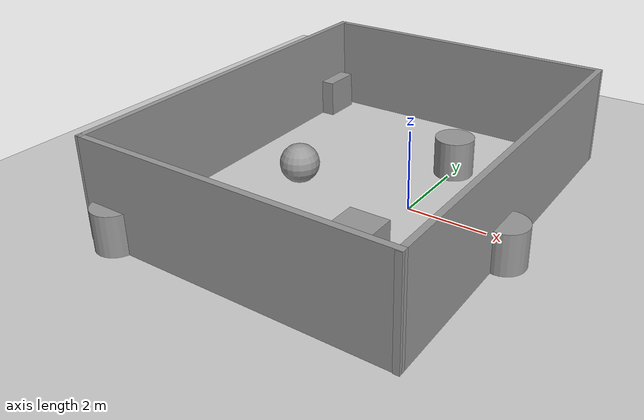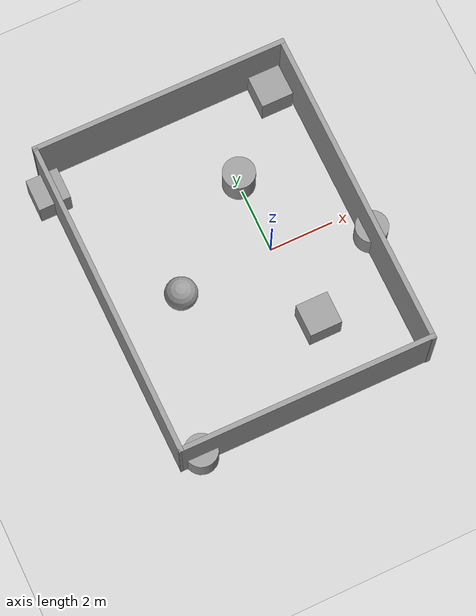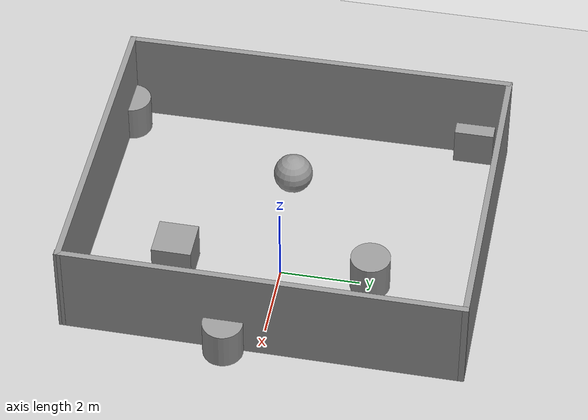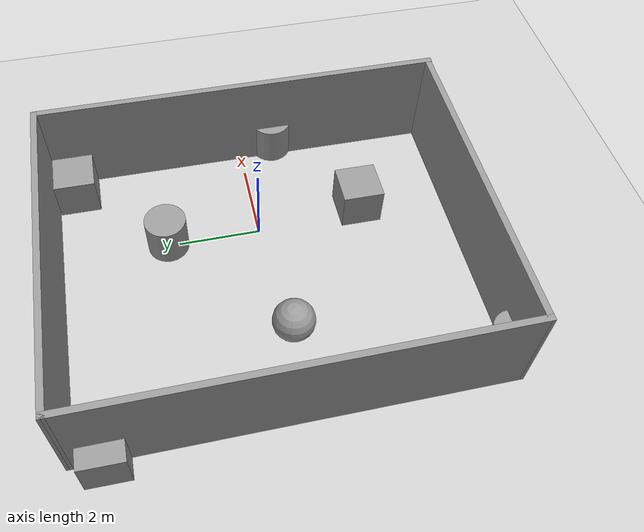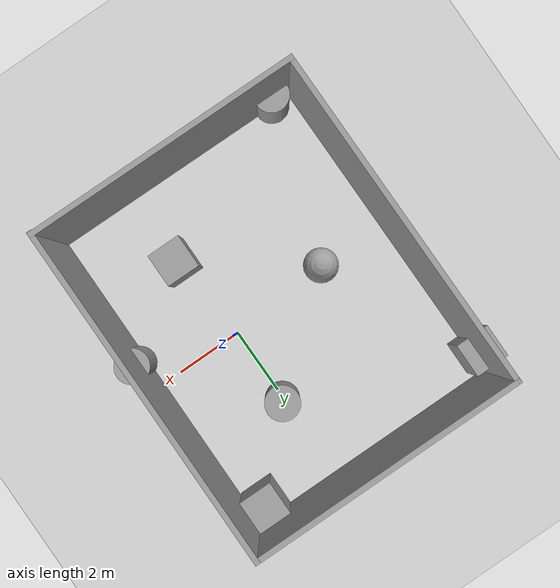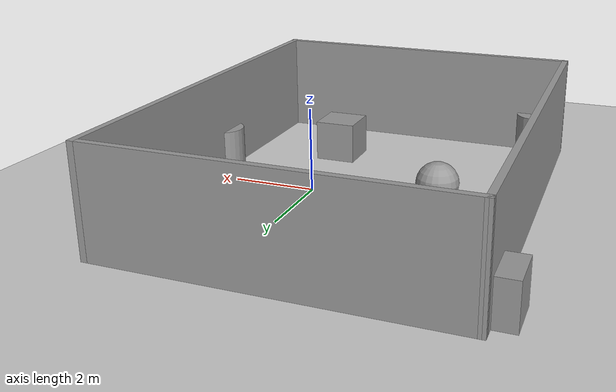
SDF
<sdf version="1.7">
 <world name="default">
  <light name="sun" type="directional">
   <pose>0 0 10 0 -0 0</pose>
   <diffuse>0.8 0.8 0.8 1</diffuse>
   <specular>0.2 0.2 0.2 1</specular>
   <attenuation>
    <range>1000</range>
    <constant>0.9</constant>
    <linear>0.01</linear>
    <quadratic>0.001</quadratic>
   </attenuation>
   <direction>-0.5 0.1 -0.9</direction>
   <spot><inner_angle>0</inner_angle><outer_angle>0</outer_angle><falloff>0</falloff></spot>
  </light>
  <model name="ground_plane">
   <static>1</static>
   <link name="link">
    <collision name="collision">
     <geometry><plane><normal>0 0 1</normal><size>100 100</size></plane></geometry>
     <surface><friction><ode><mu>100</mu><mu2>50</mu2></ode></friction></surface>
    </collision>
    <visual name="visual">
     <cast_shadows>0</cast_shadows>
     <geometry><plane><normal>0 0 1</normal><size>100 100</size></plane></geometry>
     <material>
      <script><uri>file://media/materials/scripts/gazebo.material</uri><name>Gazebo/Grey</name></script>
     </material>
    </visual>
   </link>
  </model>
  <gravity>0 0 -9.8</gravity>
  <magnetic_field>6e-06 2.3e-05 -4.2e-05</magnetic_field>
  <atmosphere type="adiabatic"/>
  <physics type="ode">
   <max_step_size>0.001</max_step_size>
   <real_time_factor>1</real_time_factor>
   <real_time_update_rate>1000</real_time_update_rate>
  </physics>
  <scene><ambient>0.4 0.4 0.4 1</ambient><background>0.7 0.7 0.7 1</background><shadows>1</shadows></scene>
  <spherical_coordinates>
   <surface_model>EARTH_WGS84</surface_model>
   <latitude_deg>0</latitude_deg>
   <longitude_deg>0</longitude_deg>
   <elevation>0</elevation>
   <heading_deg>0</heading_deg>
  </spherical_coordinates>
  <model name="unit_cylinder">
   <pose>2.81271 -0.874618 0.5 0 -0 0</pose>
   <link name="link">
    <inertial>
     <mass>1</mass>
     <inertia><ixx>0.145833</ixx><ixy>0</ixy><ixz>0</ixz><iyy>0.145833</iyy><iyz>0</iyz><izz>0.125</izz></inertia>
    </inertial>
    <collision name="collision">
     <geometry><cylinder><radius>0.5</radius><length>1</length></cylinder></geometry>
    </collision>
    <visual name="visual">
     <geometry><cylinder><radius>0.5</radius><length>1</length></cylinder></geometry>
     <material>
      <script><name>Gazebo/Grey</name><uri>file://media/materials/scripts/gazebo.material</uri></script>
     </material>
    </visual>
   </link>
  </model>
  <model name="unit_cylinder_0">
   <pose>-4.48069 -4.79553 0.5 0 -0 0</pose>
   <link name="link">
    <inertial>
     <mass>1</mass>
     <inertia><ixx>0.145833</ixx><ixy>0</ixy><ixz>0</ixz><iyy>0.145833</iyy><iyz>0</iyz><izz>0.125</izz></inertia>
    </inertial>
    <collision name="collision">
     <geometry><cylinder><radius>0.5</radius><length>1</length></cylinder></geometry>
    </collision>
    <visual name="visual">
     <geometry><cylinder><radius>0.5</radius><length>1</length></cylinder></geometry>
     <material>
      <script><name>Gazebo/Grey</name><uri>file://media/materials/scripts/gazebo.material</uri></script>
     </material>
    </visual>
   </link>
  </model>
  <model name="unit_box">
   <pose>2.02246 4.3381 0.499995 0 1e-05 0</pose>
   <link name="link">
    <inertial>
     <mass>1</mass>
     <inertia>
      <ixx>0.166667</ixx>
      <ixy>0</ixy>
      <ixz>0</ixz>
      <iyy>0.166667</iyy>
      <iyz>0</iyz>
      <izz>0.166667</izz>
     </inertia>
    </inertial>
    <collision name="collision"><geometry><box><size>1 1 1</size></box></geometry></collision>
    <visual name="visual">
     <geometry><box><size>1 1 1</size></box></geometry>
     <material>
      <script><name>Gazebo/Grey</name><uri>file://media/materials/scripts/gazebo.material</uri></script>
     </material>
    </visual>
   </link>
  </model>
  <model name="unit_box_0">
   <pose>-5.2498 4.16796 0.499995 1e-05 -0 0</pose>
   <link name="link">
    <inertial>
     <mass>1</mass>
     <inertia>
      <ixx>0.166667</ixx>
      <ixy>0</ixy>
      <ixz>0</ixz>
      <iyy>0.166667</iyy>
      <iyz>0</iyz>
      <izz>0.166667</izz>
     </inertia>
    </inertial>
    <collision name="collision"><geometry><box><size>1 1 1</size></box></geometry></collision>
    <visual name="visual">
     <geometry><box><size>1 1 1</size></box></geometry>
     <material>
      <script><name>Gazebo/Grey</name><uri>file://media/materials/scripts/gazebo.material</uri></script>
     </material>
    </visual>
   </link>
  </model>
  <model name="unit_sphere">
   <pose>-3.00725 -0.232487 0.5 0 -0 0</pose>
   <link name="link">
    <inertial>
     <mass>1</mass>
     <inertia><ixx>0.1</ixx><ixy>0</ixy><ixz>0</ixz><iyy>0.1</iyy><iyz>0</iyz><izz>0.1</izz></inertia>
    </inertial>
    <collision name="collision"><geometry><sphere><radius>0.5</radius></sphere></geometry></collision>
    <visual name="visual">
     <geometry><sphere><radius>0.5</radius></sphere></geometry>
     <material>
      <script><name>Gazebo/Grey</name><uri>file://media/materials/scripts/gazebo.material</uri></script>
     </material>
    </visual>
   </link>
  </model>
  <model name="unit_cylinder_1">
   <pose>0.017411 2.26912 0.5 -0 -0 -0</pose>
   <link name="link">
    <inertial>
     <mass>1</mass>
     <inertia><ixx>0.145833</ixx><ixy>0</ixy><ixz>0</ixz><iyy>0.145833</iyy><iyz>0</iyz><izz>0.125</izz></inertia>
    </inertial>
    <collision name="collision">
     <geometry><cylinder><radius>0.5</radius><length>1</length></cylinder></geometry>
    </collision>
    <visual name="visual">
     <geometry><cylinder><radius>0.5</radius><length>1</length></cylinder></geometry>
     <material>
      <script><name>Gazebo/Grey</name><uri>file://media/materials/scripts/gazebo.material</uri></script>
     </material>
    </visual>
   </link>
  </model>
  <model name="Untitled_0">
   <pose>-1.27947 0.008658 0 0 -0 0</pose>
   <link name="Wall_0">
    <collision name="Wall_0_Collision">
     <geometry><box><size>7.91304 0.15 2.5</size></box></geometry>
     <pose>0 0 1.25 0 -0 0</pose>
    </collision>
    <visual name="Wall_0_Visual">
     <pose>0 0 1.25 0 -0 0</pose>
     <geometry><box><size>7.91304 0.15 2.5</size></box></geometry>
     <material>
      <script><uri>file://media/materials/scripts/gazebo.material</uri><name>Gazebo/Grey</name></script>
      <ambient>1 1 1 1</ambient>
     </material>
     <meta><layer>0</layer></meta>
    </visual>
    <pose>0.043728 -4.88161 0 0 -0 -0.006759</pose>
   </link>
   <link name="Wall_2">
    <collision name="Wall_2_Collision">
     <geometry><box><size>10 0.15 2.5</size></box></geometry>
     <pose>0 0 1.25 0 -0 0</pose>
    </collision>
    <visual name="Wall_2_Visual">
     <pose>0 0 1.25 0 -0 0</pose>
     <geometry><box><size>10 0.15 2.5</size></box></geometry>
     <material>
      <script><uri>file://media/materials/scripts/gazebo.material</uri><name>Gazebo/Grey</name></script>
      <ambient>1 1 1 1</ambient>
     </material>
     <meta><layer>0</layer></meta>
    </visual>
    <pose>3.925 -0.000334 0 0 -0 1.5708</pose>
   </link>
   <link name="Wall_4">
    <collision name="Wall_4_Collision">
     <geometry><box><size>8 0.15 2.5</size></box></geometry>
     <pose>0 0 1.25 0 -0 0</pose>
    </collision>
    <visual name="Wall_4_Visual">
     <pose>0 0 1.25 0 -0 0</pose>
     <geometry><box><size>8 0.15 2.5</size></box></geometry>
     <material>
      <script><uri>file://media/materials/scripts/gazebo.material</uri><name>Gazebo/Grey</name></script>
      <ambient>1 1 1 1</ambient>
     </material>
     <meta><layer>0</layer></meta>
    </visual>
    <pose>2e-06 4.92467 0 0 -0 3.14159</pose>
   </link>
   <link name="Wall_5">
    <collision name="Wall_5_Collision">
     <geometry><box><size>0.15 0.15 2.5</size></box></geometry>
     <pose>0 0 1.25 0 -0 0</pose>
    </collision>
    <visual name="Wall_5_Visual">
     <pose>0 0 1.25 0 -0 0</pose>
     <geometry><box><size>0.15 0.15 2.5</size></box></geometry>
     <material>
      <script><uri>file://media/materials/scripts/gazebo.material</uri><name>Gazebo/Grey</name></script>
      <ambient>1 1 1 1</ambient>
     </material>
     <meta><layer>0</layer></meta>
    </visual>
    <pose>-3.925 4.92467 0 0 -0 0</pose>
   </link>
   <link name="Wall_7">
    <collision name="Wall_7_Collision">
     <geometry><box><size>9.93043 0.15 2.5</size></box></geometry>
     <pose>0 0 1.25 0 -0 0</pose>
    </collision>
    <visual name="Wall_7_Visual">
     <pose>0 0 1.25 0 -0 0</pose>
     <geometry><box><size>9.93043 0.15 2.5</size></box></geometry>
     <material>
      <script><uri>file://media/materials/scripts/gazebo.material</uri><name>Gazebo/Grey</name></script>
      <ambient>1 1 1 1</ambient>
     </material>
     <meta><layer>0</layer></meta>
    </visual>
    <pose>-3.88127 0.034646 0 0 -0 -1.56185</pose>
   </link>
   <static>1</static>
  </model>
  <model name="unit_box_1">
   <pose>0.267058 -2.59843 0.5 0 -0 0</pose>
   <link name="link">
    <inertial>
     <mass>1</mass>
     <inertia>
      <ixx>0.166667</ixx>
      <ixy>0</ixy>
      <ixz>0</ixz>
      <iyy>0.166667</iyy>
      <iyz>0</iyz>
      <izz>0.166667</izz>
     </inertia>
    </inertial>
    <collision name="collision"><geometry><box><size>1 1 1</size></box></geometry></collision>
    <visual name="visual">
     <geometry><box><size>1 1 1</size></box></geometry>
     <material>
      <script><name>Gazebo/Grey</name><uri>file://media/materials/scripts/gazebo.material</uri></script>
     </material>
    </visual>
   </link>
  </model>
 </world>
</sdf>
